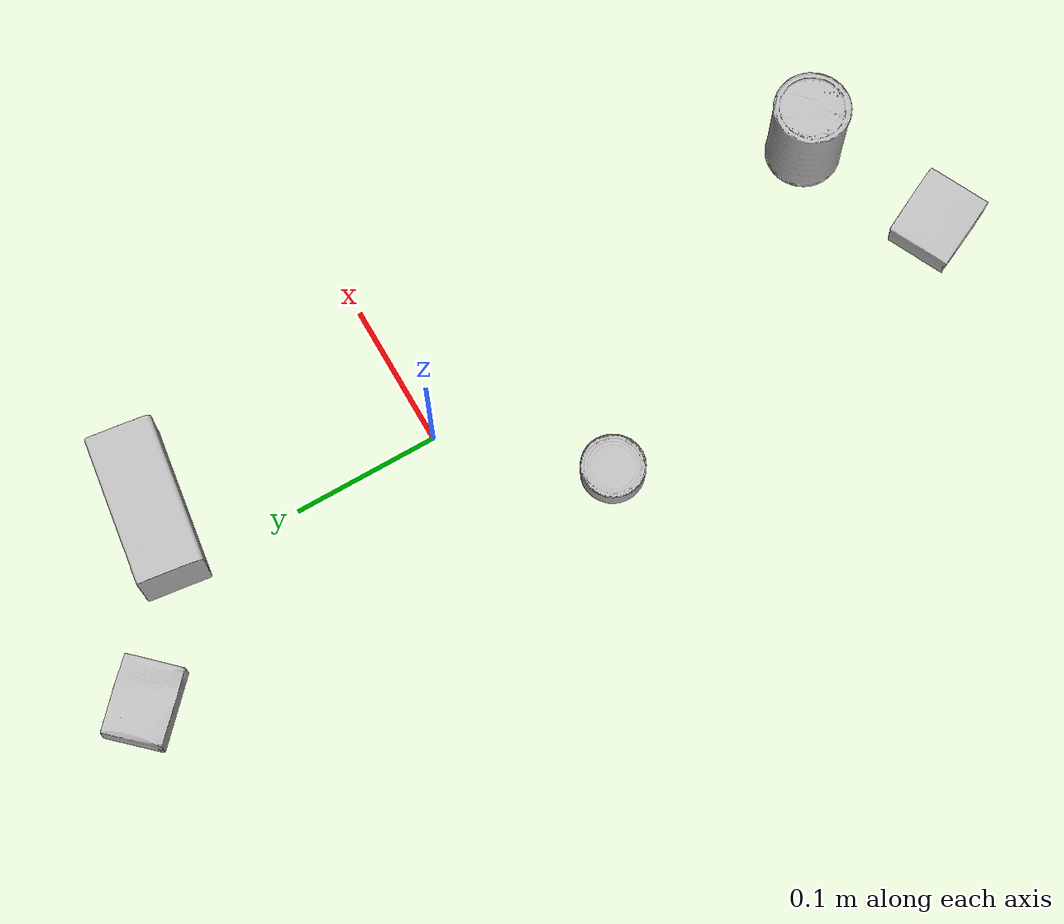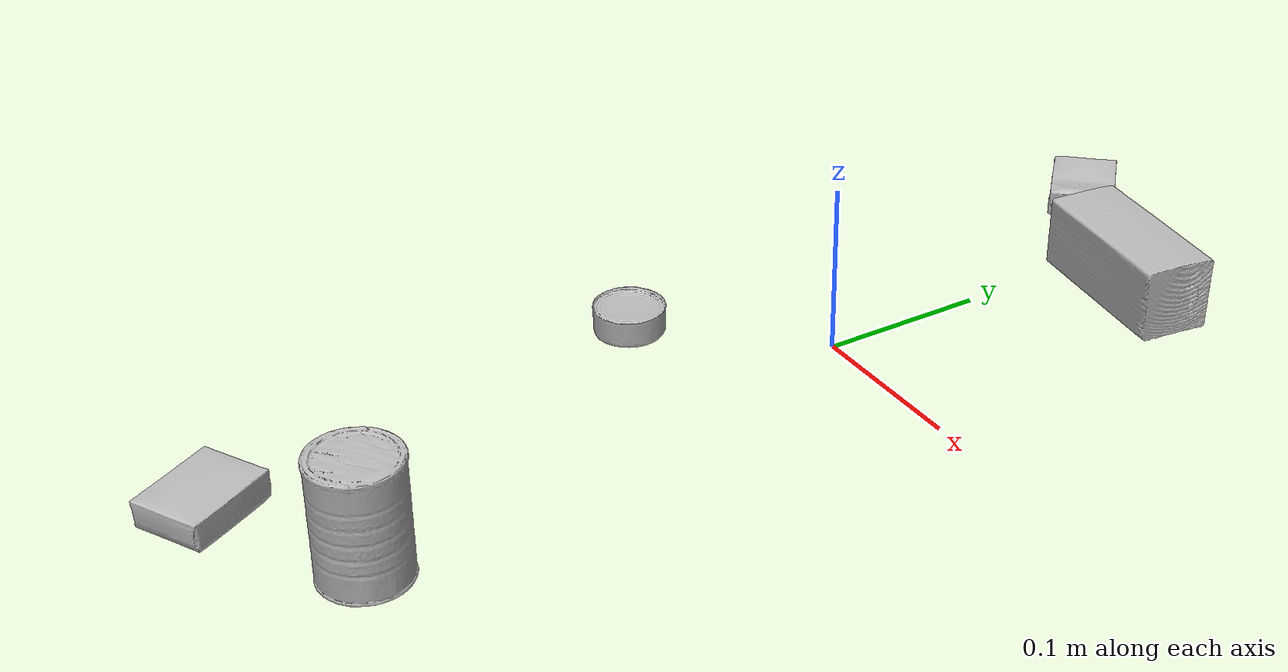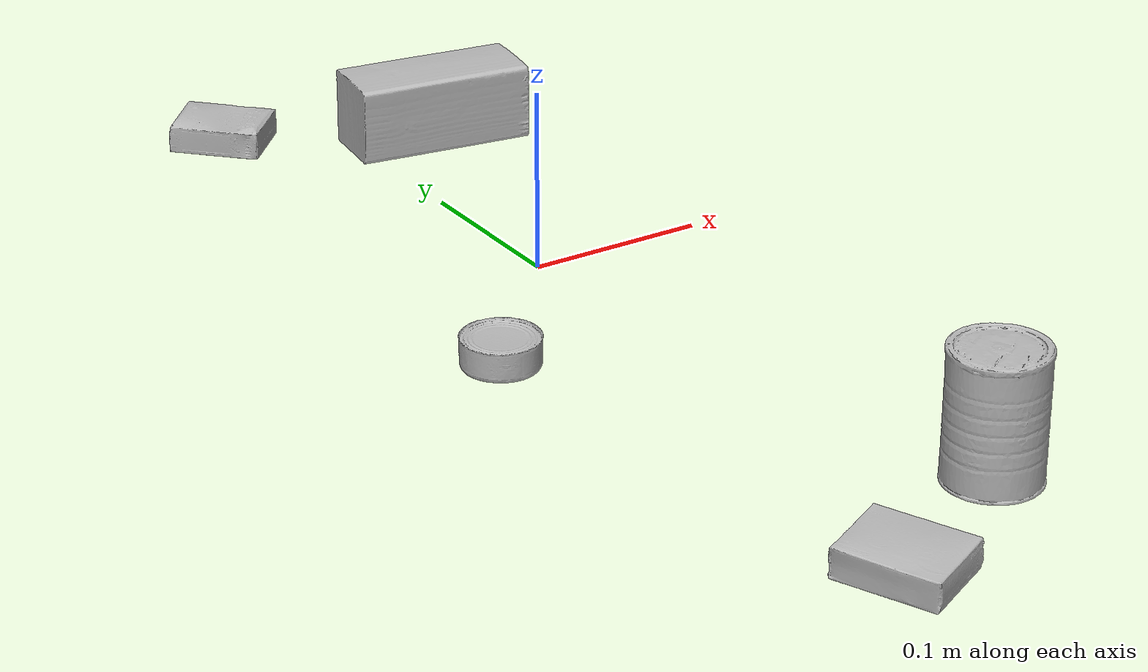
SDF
<sdf version="1.4">
  <world name="default">
    <light name="light1" type="point">
      <pose>0 0 1 0 0 0</pose>
      <diffuse>3 3 3 1</diffuse>
      <specular>3 3 3 1</specular>
    </light>
    <light name="light2" type="point">
      <pose>0 0.5 2 0 0 0</pose>
      <diffuse>1 1 1 1</diffuse>
      <specular>1 1 1 1</specular>
    </light>
    <light name="light3" type="point">
      <pose>0 0.5 2 0 0 0</pose>
      <diffuse>3 3 3 1</diffuse>
      <specular>3 3 3 1</specular>
    </light>
    <scene>
      <ambient>0.7 0.7 0.7</ambient>
    </scene>
    <model name="box1">
      <link name="link_box1">
        <collision name="default">
          <geometry>
            <mesh>
              <uri>model://pudding_box/collision_meshes/collision.obj</uri>
              <scale>0.5 0.5 0.5</scale>
            </mesh>
          </geometry>
          <surface>
            <friction>
              <ode>
                <mu>0.5</mu>
                <mu2>0.5</mu2>
              </ode>
            </friction>
          <contact>
        <ode>
            <max_vel>0</max_vel>
            <min_depth>0.0001</min_depth>
            <kp>1e8</kp>
        </ode>
    </contact></surface>
        </collision>
        <visual name="default">
          <geometry>
            <mesh>
              <uri>model://pudding_box/visual_meshes/visual.dae</uri>
              <scale>0.5 0.5 0.5</scale>
            </mesh>
          </geometry>
        </visual>
        <inertial>
          <mass>0.03999795392155647</mass>
          <pose>0.00024474109522998333 0.0004033942532259971 -0.0002594413817860186 0.005213101299265121 -0.006603799659933957 0.020079830747700592</pose>
          <inertia>
            <ixx>1.1303907e-05</ixx>
            <iyy>7.605349e-06</iyy>
            <izz>1.6693173e-05</izz>
            <ixy>0</ixy>
            <ixz>0</ixz>
            <iyz>0</iyz>
          </inertia>
        </inertial>
      </link>
      <pose>-0.036909401416778564 -0.3628121316432953 0.009862900711596012 0.022348542592249686 -0.011391755088778854 0.4552181807470927</pose>
    </model>
    <model name="box2">
      <link name="link_box2">
        <collision name="default">
          <geometry>
            <mesh>
              <uri>model://cracker_box/collision_meshes/collision.obj</uri>
              <scale>0.25 0.25 0.25</scale>
            </mesh>
          </geometry>
          <surface>
            <friction>
              <ode>
                <mu>0.5</mu>
                <mu2>0.5</mu2>
              </ode>
            </friction>
          <contact>
        <ode>
            <max_vel>0</max_vel>
            <min_depth>0.0001</min_depth>
            <kp>1e8</kp>
        </ode>
    </contact></surface>
        </collision>
        <visual name="default">
          <geometry>
            <mesh>
              <uri>model://cracker_box/visual_meshes/visual.dae</uri>
              <scale>0.25 0.25 0.25</scale>
            </mesh>
          </geometry>
        </visual>
        <inertial>
          <mass>0.046595875173807144</mass>
          <pose>0.00023660322767682374 6.358561950037256e-05 -0.0004257383698131889 -0.00031620768958073674 -0.011106491463008503 0.002546795235494827</pose>
          <inertia>
            <ixx>7.407444e-06</ixx>
            <iyy>1.2231146e-05</iyy>
            <izz>1.7454966e-05</izz>
            <ixy>0</ixy>
            <ixz>0</ixz>
            <iyz>0</iyz>
          </inertia>
        </inertial>
      </link>
      <pose>-0.0638866052031517 0.24154028296470642 0.009120448492467403 -0.011788129371984181 -0.007367064410384348 2.37859549611645</pose>
    </model>
    <model name="box3">
      <link name="link_box3">
        <collision name="default">
          <geometry>
            <mesh>
              <uri>model://wood_block/collision_meshes/collision.obj</uri>
              <scale>0.5 0.5 0.5</scale>
            </mesh>
          </geometry>
          <surface>
            <friction>
              <ode>
                <mu>0.5</mu>
                <mu2>0.5</mu2>
              </ode>
            </friction>
          <contact>
        <ode>
            <max_vel>0</max_vel>
            <min_depth>0.0001</min_depth>
            <kp>1e8</kp>
        </ode>
    </contact></surface>
        </collision>
        <visual name="default">
          <geometry>
            <mesh>
              <uri>model://wood_block/visual_meshes/visual.dae</uri>
              <scale>0.5 0.5 0.5</scale>
            </mesh>
          </geometry>
        </visual>
        <inertial>
          <mass>0.28600308299064636</mass>
          <pose>-2.9066577553749084e-06 -0.000285404734313488 0.00013204291462898254 -0.052207212015849935 -0.005192697210617926 -0.006861377963206113</pose>
          <inertia>
            <ixx>9.567885e-05</ixx>
            <iyy>0.00030224954</iyy>
            <izz>0.00030111894</izz>
            <ixy>0</ixy>
            <ixz>0</ixz>
            <iyz>0</iyz>
          </inertia>
        </inertial>
      </link>
      <pose>0.0432407520711422 0.1819716840982437 0.022629264742136 -0.0052085866639568455 0.00571875942264366 -0.13535985525008606</pose>
    </model>
    <model name="can1">
      <link name="link_can1">
        <collision name="default">
          <geometry>
            <mesh>
              <uri>model://master_chef_can/collision_meshes/collision.obj</uri>
              <scale>0.5 0.5 0.5</scale>
            </mesh>
          </geometry>
          <surface>
            <friction>
              <ode>
                <mu>0.5</mu>
                <mu2>0.5</mu2>
              </ode>
            </friction>
          <contact>
        <ode>
            <max_vel>0</max_vel>
            <min_depth>0.0001</min_depth>
            <kp>1e8</kp>
        </ode>
    </contact></surface>
        </collision>
        <visual name="default">
          <geometry>
            <mesh>
              <uri>model://master_chef_can/visual_meshes/visual.dae</uri>
              <scale>0.5 0.5 0.5</scale>
            </mesh>
          </geometry>
        </visual>
        <inertial>
          <mass>0.116209015250206</mass>
          <pose>-4.661964703700505e-05 1.3926850783718692e-07 -5.0799026212189347e-05 -0.001799512795725948 0.0006479254888938259 -0.6102617322721998</pose>
          <inertia>
            <ixx>6.820682e-05</ixx>
            <iyy>6.7704816e-05</iyy>
            <izz>3.768948e-05</izz>
            <ixy>0</ixy>
            <ixz>0</ixz>
            <iyz>0</iyz>
          </inertia>
        </inertial>
      </link>
      <pose>0.0530230738222599 -0.31427639722824097 0.035301994532346725 -1.3507681254393273e-06 -9.231873357255813e-07 -1.9445535275945902</pose>
    </model>
    <model name="can2">
      <link name="link_can2">
        <collision name="default">
          <geometry>
            <mesh>
              <uri>model://tuna_fish_can/collision_meshes/collision.obj</uri>
              <scale>0.5 0.5 0.5</scale>
            </mesh>
          </geometry>
          <surface>
            <friction>
              <ode>
                <mu>0.5</mu>
                <mu2>0.5</mu2>
              </ode>
            </friction>
          <contact>
        <ode>
            <max_vel>0</max_vel>
            <min_depth>0.0001</min_depth>
            <kp>1e8</kp>
        </ode>
    </contact></surface>
        </collision>
        <visual name="default">
          <geometry>
            <mesh>
              <uri>model://tuna_fish_can/visual_meshes/visual.dae</uri>
              <scale>0.5 0.5 0.5</scale>
            </mesh>
          </geometry>
        </visual>
        <inertial>
          <mass>0.017585277557373047</mass>
          <pose>-2.03625786525663e-05 -7.2565176196803804e-06 -0.000526902440469712 -0.0017944765250671837 0.00017163661440384507 0.24054644931605637</pose>
          <inertia>
            <ixx>2.3775558e-06</ixx>
            <iyy>2.3676464e-06</iyy>
            <izz>4.0683376e-06</izz>
            <ixy>0</ixy>
            <ixz>0</ixz>
            <iyz>0</iyz>
          </inertia>
        </inertial>
      </link>
      <pose>-0.0782196894288063 -0.08864310383796692 0.00851999968290329 -2.204164221345257e-08 9.771301186067845e-09 0.19098211131316264</pose>
    </model>
  <physics type="ode">
      <max_contacts>50</max_contacts>
      <ode>
        <solver>
          <type>quick</type>
          <iters>75</iters>
        </solver>
        <constraints>
          <contact_max_correcting_vel>0</contact_max_correcting_vel>
          <contact_surface_layer>0</contact_surface_layer>
        </constraints>
      </ode>
    </physics></world>
</sdf>
